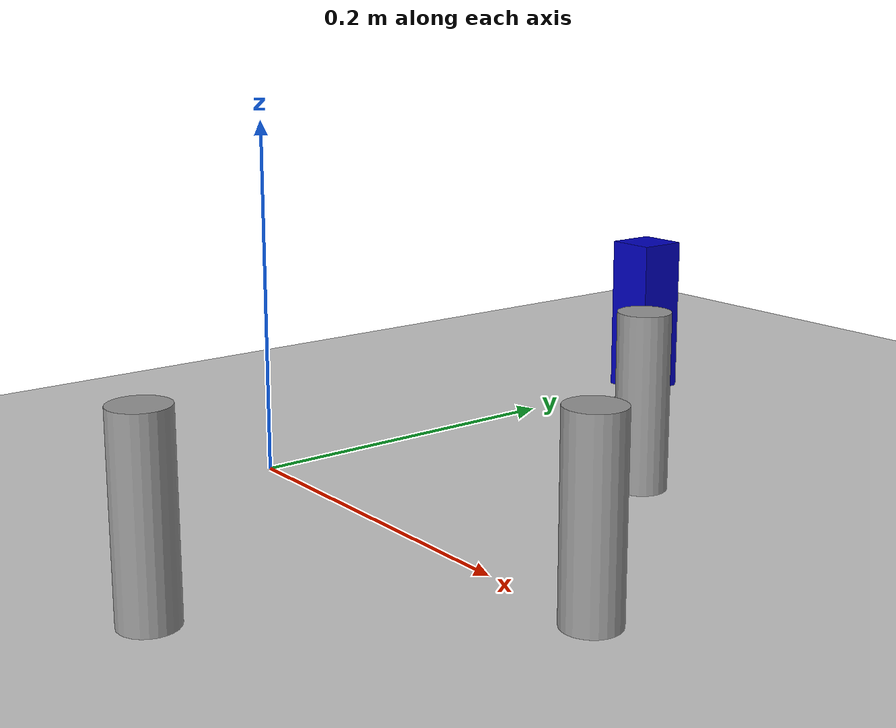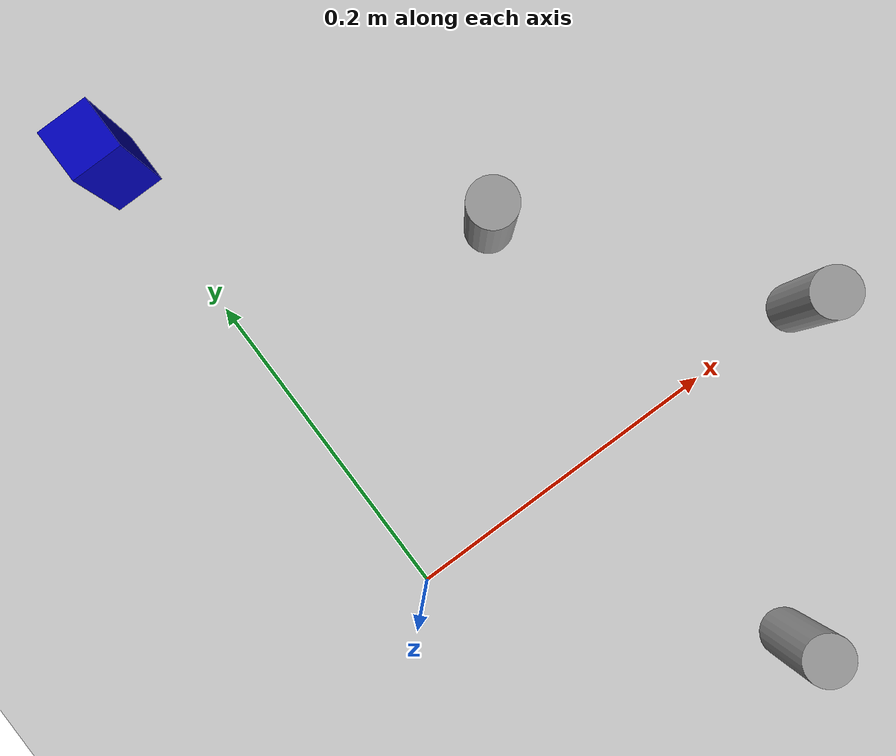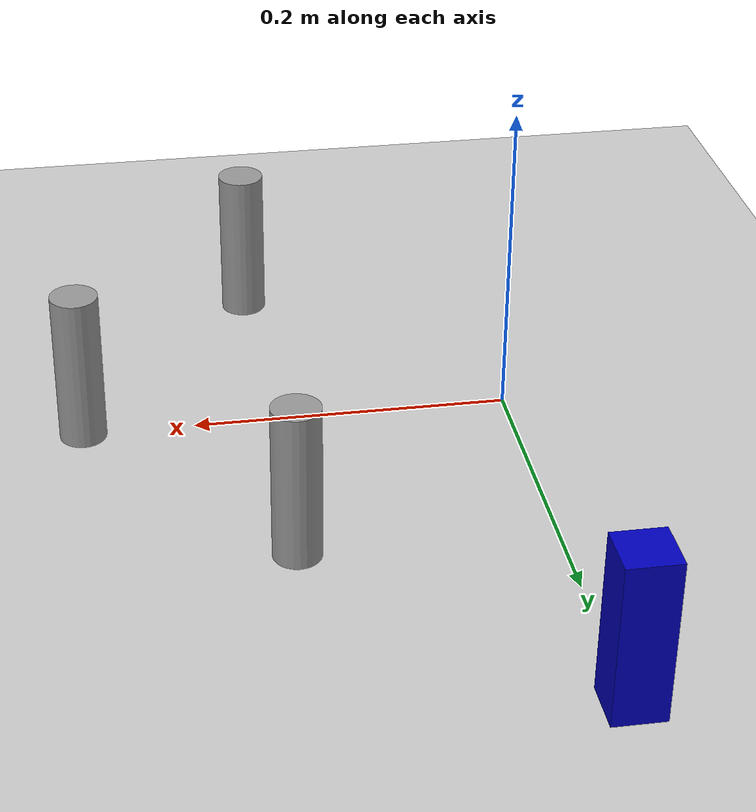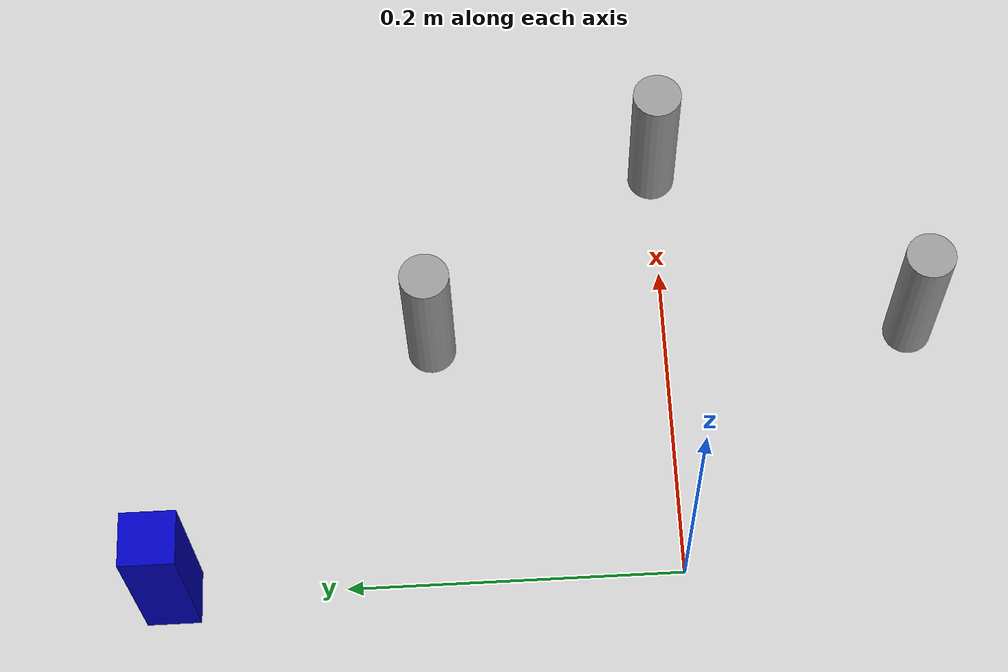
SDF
<sdf version="1.6">
 <world name="default">
  <light name="sun" type="directional">
   <pose>0 0 10 0 -0 0</pose>
   <diffuse>0.8 0.8 0.8 1</diffuse>
   <specular>0.1 0.1 0.1 1</specular>
   <attenuation>
    <range>1000</range>
    <constant>0.9</constant>
    <linear>0.01</linear>
    <quadratic>0.001</quadratic>
   </attenuation>
   <direction>-0.5 0.5 -1</direction>
  </light>
  <model name="ground_plane">
   <static>1</static>
   <link name="link">
    <collision name="collision">
     <geometry><plane><normal>0 0 1</normal><size>100 100</size></plane></geometry>
     <surface><friction><ode><mu>100</mu><mu2>50</mu2></ode></friction></surface>
    </collision>
    <visual name="visual">
     <cast_shadows>0</cast_shadows>
     <geometry><plane><normal>0 0 1</normal><size>100 100</size></plane></geometry>
     <material>
      <script><uri>file://media/materials/scripts/gazebo.material</uri><name>Gazebo/Grey</name></script>
     </material>
    </visual>
   </link>
  </model>
  <gravity>0 0 -9.8</gravity>
  <magnetic_field>6e-06 2.3e-05 -4.2e-05</magnetic_field>
  <atmosphere type="adiabatic"/>
  <physics name="default_physics" default="0" type="ode">
   <max_step_size>0.001</max_step_size>
   <real_time_factor>1</real_time_factor>
   <real_time_update_rate>1000</real_time_update_rate>
  </physics>
  <scene><ambient>0.4 0.4 0.4 1</ambient><background>0.7 0.7 0.7 1</background><shadows>1</shadows></scene>
  <spherical_coordinates>
   <surface_model>EARTH_WGS84</surface_model>
   <latitude_deg>0</latitude_deg>
   <longitude_deg>0</longitude_deg>
   <elevation>0</elevation>
   <heading_deg>0</heading_deg>
  </spherical_coordinates>
  <model name="unit_cylinder_01">
   <link name="link">
    <inertial>
     <mass>0.05</mass>
     <inertia><ixx>8e-08</ixx><ixy>0</ixy><ixz>0</ixz><iyy>8e-08</iyy><iyz>0</iyz><izz>1e-08</izz></inertia>
    </inertial>
    <visual name="visual">
     <geometry><cylinder><radius>0.0147919</radius><length>0.0999711</length></cylinder></geometry>
     <material>
      <script><name>Gazebo/Grey</name><uri>file://media/materials/scripts/gazebo.material</uri></script>
      <ambient>0.3 0.3 0.3 1</ambient>
      <diffuse>0.7 0.7 0.7 1</diffuse>
      <specular>0.01 0.01 0.01 1</specular>
      <emissive>0 0 0 1</emissive>
      <shader type="vertex"><normal_map>__default__</normal_map></shader>
     </material>
    </visual>
    <collision name="collision">
     <geometry><cylinder><radius>0.014792</radius><length>0.099971</length></cylinder></geometry>
     <surface>
      <friction>
       <ode><mu>1</mu><mu2>1</mu2><fdir1>0 0 0</fdir1><slip1>0</slip1><slip2>0</slip2></ode>
       <torsional>
        <coefficient>1</coefficient>
        <patch_radius>0</patch_radius>
        <surface_radius>0</surface_radius>
        <use_patch_radius>1</use_patch_radius>
        <ode><slip>0</slip></ode>
       </torsional>
      </friction>
      <bounce><restitution_coefficient>0</restitution_coefficient><threshold>1e+06</threshold></bounce>
      <contact>
       <collide_without_contact>0</collide_without_contact>
       <collide_without_contact_bitmask>1</collide_without_contact_bitmask>
       <collide_bitmask>1</collide_bitmask>
       <ode>
        <soft_cfm>0</soft_cfm>
        <soft_erp>0.2</soft_erp>
        <kp>1e+13</kp>
        <kd>1</kd>
        <max_vel>0.01</max_vel>
        <min_depth>0</min_depth>
       </ode>
       <bullet>
        <split_impulse>1</split_impulse>
        <split_impulse_penetration_threshold>-0.01</split_impulse_penetration_threshold>
        <soft_cfm>0</soft_cfm>
        <soft_erp>0.2</soft_erp>
        <kp>1e+13</kp>
        <kd>1</kd>
       </bullet>
      </contact>
     </surface>
    </collision>
   </link>
   <static>0</static>
   <pose>0.151286 -0.151582 0.049964 0.000401 0.000199 0.330419</pose>
  </model>
  <model name="unit_cylinder_0">
   <link name="link">
    <inertial>
     <mass>8.758e-05</mass>
     <inertia><ixx>8e-08</ixx><ixy>0</ixy><ixz>0</ixz><iyy>8e-08</iyy><iyz>0</iyz><izz>1e-08</izz></inertia>
    </inertial>
    <visual name="visual">
     <geometry><cylinder><radius>0.0147919</radius><length>0.0999711</length></cylinder></geometry>
     <material>
      <script><name>Gazebo/Grey</name><uri>file://media/materials/scripts/gazebo.material</uri></script>
      <ambient>0.3 0.3 0.3 1</ambient>
      <diffuse>0.7 0.7 0.7 1</diffuse>
      <specular>0.01 0.01 0.01 1</specular>
      <emissive>0 0 0 1</emissive>
      <shader type="vertex"><normal_map>__default__</normal_map></shader>
     </material>
    </visual>
    <collision name="collision">
     <geometry><cylinder><radius>0.014792</radius><length>0.099971</length></cylinder></geometry>
     <surface>
      <friction>
       <ode><mu>1</mu><mu2>1</mu2><fdir1>0 0 0</fdir1><slip1>0</slip1><slip2>0</slip2></ode>
       <torsional>
        <coefficient>1</coefficient>
        <patch_radius>0</patch_radius>
        <surface_radius>0</surface_radius>
        <use_patch_radius>1</use_patch_radius>
        <ode><slip>0</slip></ode>
       </torsional>
      </friction>
      <bounce><restitution_coefficient>0</restitution_coefficient><threshold>1e+06</threshold></bounce>
      <contact>
       <collide_without_contact>0</collide_without_contact>
       <collide_without_contact_bitmask>1</collide_without_contact_bitmask>
       <collide_bitmask>1</collide_bitmask>
       <ode>
        <soft_cfm>0</soft_cfm>
        <soft_erp>0.2</soft_erp>
        <kp>1e+13</kp>
        <kd>1</kd>
        <max_vel>0.01</max_vel>
        <min_depth>0</min_depth>
       </ode>
       <bullet>
        <split_impulse>1</split_impulse>
        <split_impulse_penetration_threshold>-0.01</split_impulse_penetration_threshold>
        <soft_cfm>0</soft_cfm>
        <soft_erp>0.2</soft_erp>
        <kp>1e+13</kp>
        <kd>1</kd>
       </bullet>
      </contact>
     </surface>
    </collision>
   </link>
   <static>0</static>
   <pose>0.27 0 0.049979 0 0 -7e-06</pose>
  </model>
  <model name="unit_cylinder_01_0">
   <link name="link">
    <inertial>
     <mass>0.05</mass>
     <inertia><ixx>8e-08</ixx><ixy>0</ixy><ixz>0</ixz><iyy>8e-08</iyy><iyz>0</iyz><izz>1e-08</izz></inertia>
    </inertial>
    <visual name="visual">
     <geometry><cylinder><radius>0.0147919</radius><length>0.0999711</length></cylinder></geometry>
     <material>
      <script><name>Gazebo/Grey</name><uri>file://media/materials/scripts/gazebo.material</uri></script>
      <ambient>0.3 0.3 0.3 1</ambient>
      <diffuse>0.7 0.7 0.7 1</diffuse>
      <specular>0.01 0.01 0.01 1</specular>
      <emissive>0 0 0 1</emissive>
      <shader type="vertex"><normal_map>__default__</normal_map></shader>
     </material>
    </visual>
    <collision name="collision">
     <geometry><cylinder><radius>0.014792</radius><length>0.099971</length></cylinder></geometry>
     <surface>
      <friction>
       <ode><mu>1</mu><mu2>1</mu2><fdir1>0 0 0</fdir1><slip1>0</slip1><slip2>0</slip2></ode>
       <torsional>
        <coefficient>1</coefficient>
        <patch_radius>0</patch_radius>
        <surface_radius>0</surface_radius>
        <use_patch_radius>1</use_patch_radius>
        <ode><slip>0</slip></ode>
       </torsional>
      </friction>
      <bounce><restitution_coefficient>0</restitution_coefficient><threshold>1e+06</threshold></bounce>
      <contact>
       <collide_without_contact>0</collide_without_contact>
       <collide_without_contact_bitmask>1</collide_without_contact_bitmask>
       <collide_bitmask>1</collide_bitmask>
       <ode>
        <soft_cfm>0</soft_cfm>
        <soft_erp>0.2</soft_erp>
        <kp>1e+13</kp>
        <kd>1</kd>
        <max_vel>0.01</max_vel>
        <min_depth>0</min_depth>
       </ode>
       <bullet>
        <split_impulse>1</split_impulse>
        <split_impulse_penetration_threshold>-0.01</split_impulse_penetration_threshold>
        <soft_cfm>0</soft_cfm>
        <soft_erp>0.2</soft_erp>
        <kp>1e+13</kp>
        <kd>1</kd>
       </bullet>
      </contact>
     </surface>
    </collision>
   </link>
   <static>0</static>
   <pose>0.153861 0.145182 0.049986 0.000129 0.000472 -0.543917</pose>
  </model>
  <model name="unit_box_0_0">
   <link name="link">
    <inertial>
     <mass>0.005</mass>
     <inertia><ixx>9e-08</ixx><ixy>0</ixy><ixz>0</ixz><iyy>9e-08</iyy><iyz>0</iyz><izz>2e-08</izz></inertia>
    </inertial>
    <visual name="visual">
     <geometry><box><size>0.03124 0.03158 0.100648</size></box></geometry>
     <material>
      <script><name>Gazebo/Grey</name><uri>file://media/materials/scripts/gazebo.material</uri></script>
      <ambient>0.3 0.3 0.3 1</ambient>
      <diffuse>0 0 0.75 1</diffuse>
      <specular>0.01 0.01 0.01 1</specular>
      <emissive>0 0 0 1</emissive>
      <shader type="vertex"><normal_map>__default__</normal_map></shader>
     </material>
    </visual>
    <collision name="collision">
     <geometry><box><size>0.03124 0.03158 0.100648</size></box></geometry>
     <surface>
      <friction>
       <ode><mu>1</mu><mu2>1</mu2><fdir1>0 0 0</fdir1><slip1>0</slip1><slip2>0</slip2></ode>
       <torsional>
        <coefficient>1</coefficient>
        <patch_radius>0</patch_radius>
        <surface_radius>0</surface_radius>
        <use_patch_radius>1</use_patch_radius>
        <ode><slip>0</slip></ode>
       </torsional>
      </friction>
      <bounce><restitution_coefficient>0</restitution_coefficient><threshold>1e+06</threshold></bounce>
      <contact>
       <collide_without_contact>0</collide_without_contact>
       <collide_without_contact_bitmask>1</collide_without_contact_bitmask>
       <collide_bitmask>1</collide_bitmask>
       <ode>
        <soft_cfm>0</soft_cfm>
        <soft_erp>0.2</soft_erp>
        <kp>1e+13</kp>
        <kd>1</kd>
        <max_vel>0.01</max_vel>
        <min_depth>0</min_depth>
       </ode>
       <bullet>
        <split_impulse>1</split_impulse>
        <split_impulse_penetration_threshold>-0.01</split_impulse_penetration_threshold>
        <soft_cfm>0</soft_cfm>
        <soft_erp>0.2</soft_erp>
        <kp>1e+13</kp>
        <kd>1</kd>
       </bullet>
      </contact>
     </surface>
    </collision>
   </link>
   <static>0</static>
   <pose>0 0.301196 0.050324 0 -0 0</pose>
  </model>
 </world>
</sdf>
